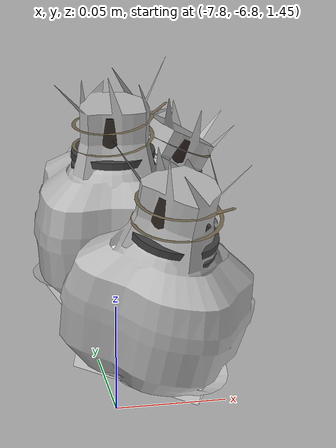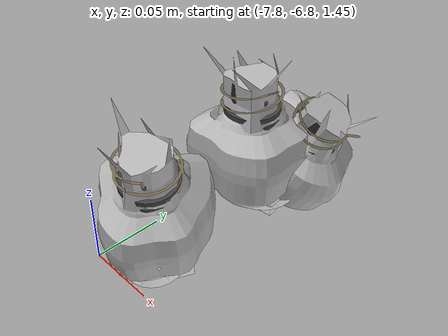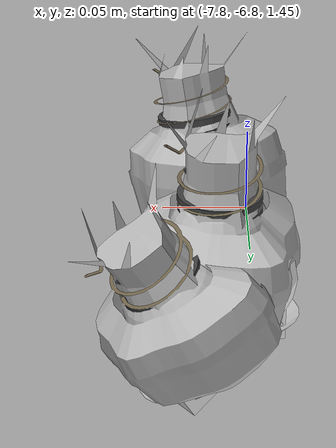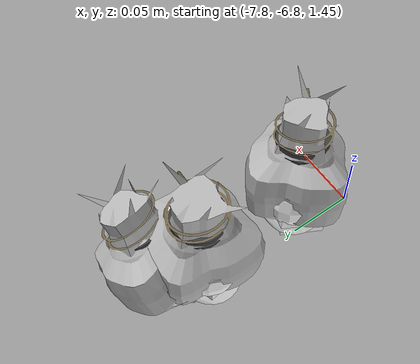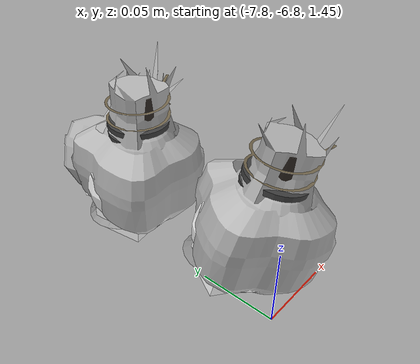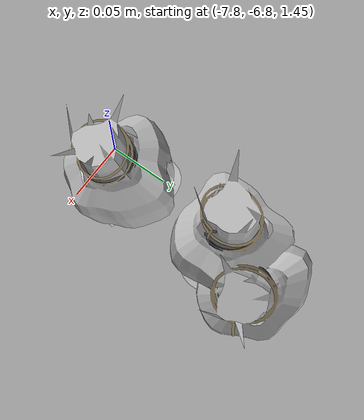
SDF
<sdf version="1.11">
 <world name="peach_orchard">
  <model name="ground">
   <static>true</static>
   <link name="link">
    <visual name="soil">
     <geometry><plane><normal>0 0 1</normal><size>32 22</size></plane></geometry>
     <material>
      <ambient>1 1 1 1</ambient>
      <diffuse>1 1 1 1</diffuse>
      <specular>0.1 0.1 0.1 1</specular>
      <pbr>
       <metal>
        <albedo_map>textures/soil_albedo.png</albedo_map>
        <normal_map type="tangent">textures/soil_normal.png</normal_map>
        <roughness>0.95</roughness>
        <metalness>0</metalness>
       </metal>
      </pbr>
     </material>
    </visual>
    <collision name="c_soil">
     <geometry><plane><normal>0 0 1</normal><size>32 22</size></plane></geometry>
    </collision>
   </link>
  </model>
  <model name="peach_tree_r0_t0_05">
   <pose>-7.78 -6.76335 1.45 0 0.215007 -0.80633</pose>
   <static>true</static>
   <link name="bag">
    <visual name="bag_mesh">
     <pose>0 0 0.0494039 0 0 -0</pose>
     <geometry>
      <mesh><uri>model://peach_sim/meshes/bagged_peach.glb</uri><scale>1.04554 1.13656 1.12282</scale></mesh>
     </geometry>
    </visual>
    <visual name="body">
     <pose>0 0 0.0314039 0 0 0</pose>
     <geometry><ellipsoid><radii>0.0392076 0.0295505 0.0339162</radii></ellipsoid></geometry>
     <material>
      <ambient>1 1 1 1</ambient>
      <diffuse>1 1 1 1</diffuse>
      <specular>0.1 0.1 0.1 1</specular>
      <pbr>
       <metal>
        <albedo_map>textures/paper_bag_albedo.png</albedo_map>
        <normal_map type="tangent">textures/paper_bag_normal.png</normal_map>
        <roughness>0.72</roughness>
        <metalness>0</metalness>
       </metal>
      </pbr>
     </material>
    </visual>
    <visual name="bottom_fold">
     <pose>0 0 0.012 0 0 0.35</pose>
     <geometry><box><size>0.0607717 0.033983 0.022</size></box></geometry>
     <material>
      <ambient>1 1 1 1</ambient>
      <diffuse>1 1 1 1</diffuse>
      <specular>0.1 0.1 0.1 1</specular>
      <pbr>
       <metal>
        <albedo_map>textures/paper_bag_albedo.png</albedo_map>
        <normal_map type="tangent">textures/paper_bag_normal.png</normal_map>
        <roughness>0.8</roughness>
        <metalness>0</metalness>
       </metal>
      </pbr>
     </material>
    </visual>
    <visual name="fruit">
     <pose>0 0 0.0189468 0 0 0</pose>
     <geometry><sphere><radius>0.0259447</radius></sphere></geometry>
     <material>
      <ambient>1 1 1 1</ambient>
      <diffuse>1 1 1 1</diffuse>
      <specular>0.1 0.1 0.1 1</specular>
      <pbr>
       <metal>
        <albedo_map>textures/fruit_skin_albedo.png</albedo_map>
        <normal_map type="tangent">textures/fruit_skin_normal.png</normal_map>
        <roughness>0.55</roughness>
        <metalness>0</metalness>
       </metal>
      </pbr>
     </material>
    </visual>
    <visual name="neck">
     <pose>0 0 0.0718077 0 0 0</pose>
     <geometry><cylinder><radius>0.013</radius><length>0.018</length></cylinder></geometry>
     <material>
      <ambient>1 1 1 1</ambient>
      <diffuse>1 1 1 1</diffuse>
      <specular>0.1 0.1 0.1 1</specular>
      <pbr>
       <metal>
        <albedo_map>textures/paper_bag_albedo.png</albedo_map>
        <normal_map type="tangent">textures/paper_bag_normal.png</normal_map>
        <roughness>0.75</roughness>
        <metalness>0</metalness>
       </metal>
      </pbr>
     </material>
    </visual>
    <visual name="gather">
     <pose>0 0 0.0528077 0 0 0</pose>
     <geometry><cylinder><radius>0.019</radius><length>0.02</length></cylinder></geometry>
     <material>
      <ambient>1 1 1 1</ambient>
      <diffuse>1 1 1 1</diffuse>
      <specular>0.1 0.1 0.1 1</specular>
      <pbr>
       <metal>
        <albedo_map>textures/paper_bag_albedo.png</albedo_map>
        <normal_map type="tangent">textures/paper_bag_normal.png</normal_map>
        <roughness>0.8</roughness>
        <metalness>0</metalness>
       </metal>
      </pbr>
     </material>
    </visual>
    <visual name="inner_paper">
     <pose>0 0 0.0768077 0 0 0</pose>
     <geometry><cylinder><radius>0.01</radius><length>0.008</length></cylinder></geometry>
     <material>
      <ambient>0.180392 0.14902 0.133333 1</ambient>
      <diffuse>0.180392 0.14902 0.133333 1</diffuse>
      <specular>0.1 0.1 0.1 1</specular>
     </material>
    </visual>
    <visual name="wire_0">
     <pose>0 0 0.0668077 0 0 0</pose>
     <geometry><cylinder><radius>0.0205</radius><length>0.0035</length></cylinder></geometry>
     <material>
      <ambient>0.25 0.25 0.25 1</ambient>
      <diffuse>0.25 0.25 0.25 1</diffuse>
      <specular>0.1 0.1 0.1 1</specular>
     </material>
    </visual>
    <visual name="wire_1">
     <pose>0 0 0.0738077 0 0 0</pose>
     <geometry><cylinder><radius>0.0205</radius><length>0.0035</length></cylinder></geometry>
     <material>
      <ambient>0.25 0.25 0.25 1</ambient>
      <diffuse>0.25 0.25 0.25 1</diffuse>
      <specular>0.1 0.1 0.1 1</specular>
     </material>
    </visual>
    <visual name="wire_tail">
     <pose>0.01 0 0.0748077 0 0.521618 0</pose>
     <geometry><cylinder><radius>0.0012</radius><length>0.026</length></cylinder></geometry>
     <material>
      <ambient>0.25 0.25 0.25 1</ambient>
      <diffuse>0.25 0.25 0.25 1</diffuse>
      <specular>0.1 0.1 0.1 1</specular>
     </material>
    </visual>
    <collision name="c_body">
     <pose>0 0 0.0314039 0 0 0</pose>
     <geometry><cylinder><radius>0.0392076</radius><length>0.0628077</length></cylinder></geometry>
    </collision>
   </link>
  </model>
  <model name="peach_tree_r0_t0_06">
   <pose>-7.78 -6.67434 1.45 0 7.15347e-05 -0.186366</pose>
   <static>true</static>
   <link name="bag">
    <visual name="bag_mesh">
     <pose>0 0 0.0497736 0 0 -0</pose>
     <geometry>
      <mesh><uri>model://peach_sim/meshes/bagged_peach.glb</uri><scale>1.03609 1.19763 1.13122</scale></mesh>
     </geometry>
    </visual>
    <visual name="body">
     <pose>0 0 0.0317736 0 0 0</pose>
     <geometry><ellipsoid><radii>0.0388533 0.0311383 0.0343154</radii></ellipsoid></geometry>
     <material>
      <ambient>1 1 1 1</ambient>
      <diffuse>1 1 1 1</diffuse>
      <specular>0.1 0.1 0.1 1</specular>
      <pbr>
       <metal>
        <albedo_map>textures/paper_bag_albedo.png</albedo_map>
        <normal_map type="tangent">textures/paper_bag_normal.png</normal_map>
        <roughness>0.72</roughness>
        <metalness>0</metalness>
       </metal>
      </pbr>
     </material>
    </visual>
    <visual name="bottom_fold">
     <pose>0 0 0.012 0 0 0.35</pose>
     <geometry><box><size>0.0602226 0.0358091 0.022</size></box></geometry>
     <material>
      <ambient>1 1 1 1</ambient>
      <diffuse>1 1 1 1</diffuse>
      <specular>0.1 0.1 0.1 1</specular>
      <pbr>
       <metal>
        <albedo_map>textures/paper_bag_albedo.png</albedo_map>
        <normal_map type="tangent">textures/paper_bag_normal.png</normal_map>
        <roughness>0.8</roughness>
        <metalness>0</metalness>
       </metal>
      </pbr>
     </material>
    </visual>
    <visual name="fruit">
     <pose>0 0 0.0191158 0 0 0</pose>
     <geometry><sphere><radius>0.0261204</radius></sphere></geometry>
     <material>
      <ambient>1 1 1 1</ambient>
      <diffuse>1 1 1 1</diffuse>
      <specular>0.1 0.1 0.1 1</specular>
      <pbr>
       <metal>
        <albedo_map>textures/fruit_skin_albedo.png</albedo_map>
        <normal_map type="tangent">textures/fruit_skin_normal.png</normal_map>
        <roughness>0.55</roughness>
        <metalness>0</metalness>
       </metal>
      </pbr>
     </material>
    </visual>
    <visual name="neck">
     <pose>0 0 0.0725471 0 0 0</pose>
     <geometry><cylinder><radius>0.013</radius><length>0.018</length></cylinder></geometry>
     <material>
      <ambient>1 1 1 1</ambient>
      <diffuse>1 1 1 1</diffuse>
      <specular>0.1 0.1 0.1 1</specular>
      <pbr>
       <metal>
        <albedo_map>textures/paper_bag_albedo.png</albedo_map>
        <normal_map type="tangent">textures/paper_bag_normal.png</normal_map>
        <roughness>0.75</roughness>
        <metalness>0</metalness>
       </metal>
      </pbr>
     </material>
    </visual>
    <visual name="gather">
     <pose>0 0 0.0535471 0 0 0</pose>
     <geometry><cylinder><radius>0.019</radius><length>0.02</length></cylinder></geometry>
     <material>
      <ambient>1 1 1 1</ambient>
      <diffuse>1 1 1 1</diffuse>
      <specular>0.1 0.1 0.1 1</specular>
      <pbr>
       <metal>
        <albedo_map>textures/paper_bag_albedo.png</albedo_map>
        <normal_map type="tangent">textures/paper_bag_normal.png</normal_map>
        <roughness>0.8</roughness>
        <metalness>0</metalness>
       </metal>
      </pbr>
     </material>
    </visual>
    <visual name="inner_paper">
     <pose>0 0 0.0775471 0 0 0</pose>
     <geometry><cylinder><radius>0.01</radius><length>0.008</length></cylinder></geometry>
     <material>
      <ambient>0.180392 0.14902 0.133333 1</ambient>
      <diffuse>0.180392 0.14902 0.133333 1</diffuse>
      <specular>0.1 0.1 0.1 1</specular>
     </material>
    </visual>
    <visual name="wire_0">
     <pose>0 0 0.0675471 0 0 0</pose>
     <geometry><cylinder><radius>0.0205</radius><length>0.0035</length></cylinder></geometry>
     <material>
      <ambient>0.25 0.25 0.25 1</ambient>
      <diffuse>0.25 0.25 0.25 1</diffuse>
      <specular>0.1 0.1 0.1 1</specular>
     </material>
    </visual>
    <visual name="wire_1">
     <pose>0 0 0.0745471 0 0 0</pose>
     <geometry><cylinder><radius>0.0205</radius><length>0.0035</length></cylinder></geometry>
     <material>
      <ambient>0.25 0.25 0.25 1</ambient>
      <diffuse>0.25 0.25 0.25 1</diffuse>
      <specular>0.1 0.1 0.1 1</specular>
     </material>
    </visual>
    <visual name="wire_tail">
     <pose>0.01 0 0.0755471 0 0.521618 0</pose>
     <geometry><cylinder><radius>0.0012</radius><length>0.026</length></cylinder></geometry>
     <material>
      <ambient>0.25 0.25 0.25 1</ambient>
      <diffuse>0.25 0.25 0.25 1</diffuse>
      <specular>0.1 0.1 0.1 1</specular>
     </material>
    </visual>
    <collision name="c_body">
     <pose>0 0 0.0317736 0 0 0</pose>
     <geometry><cylinder><radius>0.0388533</radius><length>0.0635471</length></cylinder></geometry>
    </collision>
   </link>
  </model>
  <model name="peach_tree_r0_t0_07">
   <pose>-7.78 -6.64712 1.45 0 0.526935 0.252127</pose>
   <static>true</static>
   <link name="bag">
    <visual name="bag_mesh">
     <pose>0 0 0.0409791 0 0 0</pose>
     <geometry>
      <mesh><uri>model://peach_sim/meshes/bagged_peach.glb</uri><scale>1.04574 1.19428 0.931342</scale></mesh>
     </geometry>
    </visual>
    <visual name="body">
     <pose>0 0 0.0229791 0 0 0</pose>
     <geometry><ellipsoid><radii>0.0392153 0.0310514 0.0248174</radii></ellipsoid></geometry>
     <material>
      <ambient>1 1 1 1</ambient>
      <diffuse>1 1 1 1</diffuse>
      <specular>0.1 0.1 0.1 1</specular>
      <pbr>
       <metal>
        <albedo_map>textures/paper_bag_albedo.png</albedo_map>
        <normal_map type="tangent">textures/paper_bag_normal.png</normal_map>
        <roughness>0.72</roughness>
        <metalness>0</metalness>
       </metal>
      </pbr>
     </material>
    </visual>
    <visual name="bottom_fold">
     <pose>0 0 0.012 0 0 0.35</pose>
     <geometry><box><size>0.0607838 0.0357091 0.022</size></box></geometry>
     <material>
      <ambient>1 1 1 1</ambient>
      <diffuse>1 1 1 1</diffuse>
      <specular>0.1 0.1 0.1 1</specular>
      <pbr>
       <metal>
        <albedo_map>textures/paper_bag_albedo.png</albedo_map>
        <normal_map type="tangent">textures/paper_bag_normal.png</normal_map>
        <roughness>0.8</roughness>
        <metalness>0</metalness>
       </metal>
      </pbr>
     </material>
    </visual>
    <visual name="fruit">
     <pose>0 0 0.0202176 0 0 0</pose>
     <geometry><sphere><radius>0.0272663</radius></sphere></geometry>
     <material>
      <ambient>1 1 1 1</ambient>
      <diffuse>1 1 1 1</diffuse>
      <specular>0.1 0.1 0.1 1</specular>
      <pbr>
       <metal>
        <albedo_map>textures/fruit_skin_albedo.png</albedo_map>
        <normal_map type="tangent">textures/fruit_skin_normal.png</normal_map>
        <roughness>0.55</roughness>
        <metalness>0</metalness>
       </metal>
      </pbr>
     </material>
    </visual>
    <visual name="neck">
     <pose>0 0 0.0549581 0 0 0</pose>
     <geometry><cylinder><radius>0.013</radius><length>0.018</length></cylinder></geometry>
     <material>
      <ambient>1 1 1 1</ambient>
      <diffuse>1 1 1 1</diffuse>
      <specular>0.1 0.1 0.1 1</specular>
      <pbr>
       <metal>
        <albedo_map>textures/paper_bag_albedo.png</albedo_map>
        <normal_map type="tangent">textures/paper_bag_normal.png</normal_map>
        <roughness>0.75</roughness>
        <metalness>0</metalness>
       </metal>
      </pbr>
     </material>
    </visual>
    <visual name="gather">
     <pose>0 0 0.0359581 0 0 0</pose>
     <geometry><cylinder><radius>0.019</radius><length>0.02</length></cylinder></geometry>
     <material>
      <ambient>1 1 1 1</ambient>
      <diffuse>1 1 1 1</diffuse>
      <specular>0.1 0.1 0.1 1</specular>
      <pbr>
       <metal>
        <albedo_map>textures/paper_bag_albedo.png</albedo_map>
        <normal_map type="tangent">textures/paper_bag_normal.png</normal_map>
        <roughness>0.8</roughness>
        <metalness>0</metalness>
       </metal>
      </pbr>
     </material>
    </visual>
    <visual name="inner_paper">
     <pose>0 0 0.0599581 0 0 0</pose>
     <geometry><cylinder><radius>0.01</radius><length>0.008</length></cylinder></geometry>
     <material>
      <ambient>0.180392 0.14902 0.133333 1</ambient>
      <diffuse>0.180392 0.14902 0.133333 1</diffuse>
      <specular>0.1 0.1 0.1 1</specular>
     </material>
    </visual>
    <visual name="wire_0">
     <pose>0 0 0.0499581 0 0 0</pose>
     <geometry><cylinder><radius>0.0205</radius><length>0.0035</length></cylinder></geometry>
     <material>
      <ambient>0.25 0.25 0.25 1</ambient>
      <diffuse>0.25 0.25 0.25 1</diffuse>
      <specular>0.1 0.1 0.1 1</specular>
     </material>
    </visual>
    <visual name="wire_1">
     <pose>0 0 0.0569581 0 0 0</pose>
     <geometry><cylinder><radius>0.0205</radius><length>0.0035</length></cylinder></geometry>
     <material>
      <ambient>0.25 0.25 0.25 1</ambient>
      <diffuse>0.25 0.25 0.25 1</diffuse>
      <specular>0.1 0.1 0.1 1</specular>
     </material>
    </visual>
    <visual name="wire_tail">
     <pose>0.01 0 0.0579581 0 0.521618 0</pose>
     <geometry><cylinder><radius>0.0012</radius><length>0.026</length></cylinder></geometry>
     <material>
      <ambient>0.25 0.25 0.25 1</ambient>
      <diffuse>0.25 0.25 0.25 1</diffuse>
      <specular>0.1 0.1 0.1 1</specular>
     </material>
    </visual>
    <collision name="c_body">
     <pose>0 0 0.0229791 0 0 0</pose>
     <geometry><cylinder><radius>0.0392153</radius><length>0.0459581</length></cylinder></geometry>
    </collision>
   </link>
  </model>
 </world>
</sdf>
